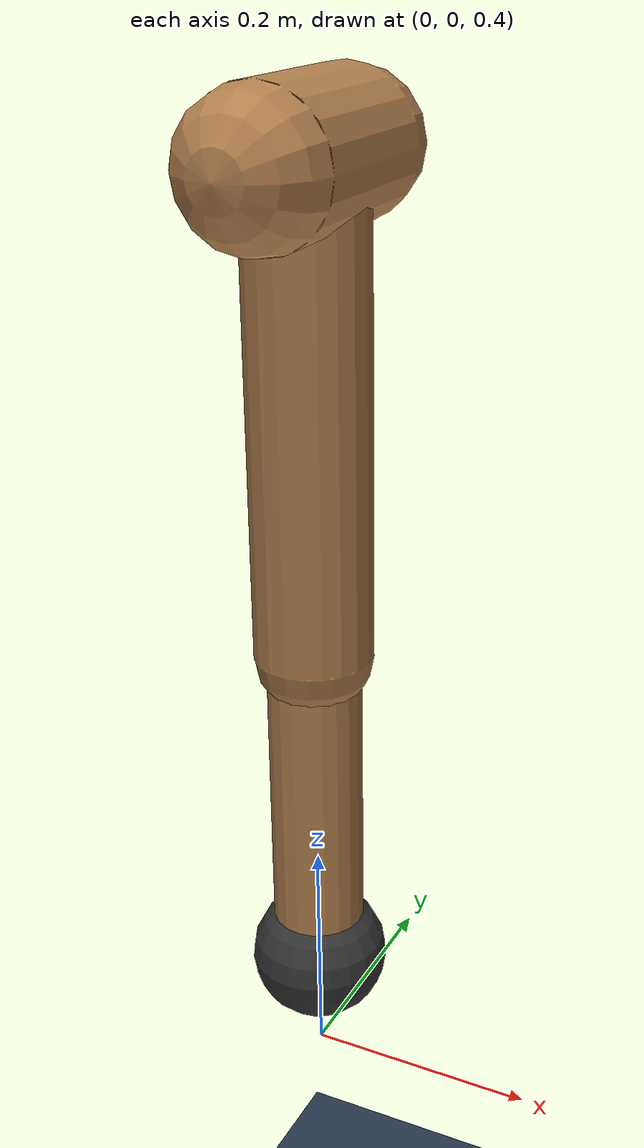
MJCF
<mujoco model="SimpleHopper_v3_Flipped">

  <compiler angle="degree"/>

  <option timestep="0.002" gravity="0 0 -9.81">
    <flag contact="enable"/>
  </option>

  <visual>
    <map znear="0.01"/>
    <headlight ambient="0.4 0.4 0.4" diffuse="0.8 0.8 0.8" specular="0.1 0.1 0.1"/>
  </visual>

  <asset>
    <texture type="2d" name="groundplane" builtin="checker" rgb1=".2 .3 .4" rgb2=".1 .15 .2" width="200" height="200"/>
    <material name="groundmat" texture="groundplane" texrepeat="10 10" reflectance="0.2"/>
    <material name="robotmat" rgba="0.7 0.5 0.3 1.0" specular="0.5" shininess="0.5"/>
    <material name="footmat" rgba="0.2 0.2 0.2 1.0" specular="0.1" shininess="0.1"/>
  </asset>

  <default>
      <joint type="hinge" damping="0.1" armature="0.01" limited="true"/>
      <geom type="capsule" size="0.04" material="robotmat"/>
      <motor ctrllimited="true" ctrlrange="-1.0 1.0"/>
  </default>

  <!-- Keyframe with Flipped Orientation -->
  <keyframe>
    <!-- qpos order: freejoint(7) + hip(1) + knee(1) -->
    <!-- freejoint: x,y,z, qw,qx,qy,qz -->
    <!-- Quaternion changed from (1 0 0 0) to (0 1 0 0) for 180deg flip around X -->
    <key name="init" qpos="0 0 1.2 0 1 0 0 0 0" />
  </keyframe>

  <worldbody>
    <geom name="ground" type="plane" size="20 20 0.1" material="groundmat" condim="3"/>
    <light name="mainlight" pos="0 0 5" dir="0 0 -1" diffuse="1.2 1.2 1.2" specular="0.1 0.1 0.1" castshadow="true"/>

    <body name="torso" pos="0 0 1.2"> <!-- Position set by keyframe -->
      <freejoint name="root"/>
      <geom type="capsule" fromto="0 -.07 0 0 .07 0" size="0.06" name="torso_geom" mass="3.0"/>

      <body name="thigh" pos="0 0 0">
        <!-- Using the axis and range from previous attempt, focus is on initial orientation -->
        <joint name="hip" axis="0 1 0" range="-20 150"/>
        <geom fromto="0 0 0  0 0 -0.4" size="0.05" name="thigh_geom" mass="1.0"/>

        <body name="leg" pos="0 0 -0.4">
          <joint name="knee" axis="0 1 0" range="-20 150"/>
          <geom fromto="0 0 0  0 0 -0.3" size="0.04" name="leg_geom" mass="0.7"/>

          <body name="foot" pos="0 0 -0.3">
            <geom type="sphere" size="0.06" name="foot_geom" mass="0.3" material="footmat" condim="3" contype="1" conaffinity="1"/>
          </body> <!-- End Foot -->
        </body> <!-- End Leg -->
      </body> <!-- End Thigh -->
    </body> <!-- End Torso -->

  </worldbody>

  <actuator>
    <motor name="hip_motor"  joint="hip"  gear="150"/>
    <motor name="knee_motor" joint="knee" gear="100"/>
  </actuator>

  <sensor>
    <!-- Sensors remain the same -->
    <jointpos name="hip_pos" joint="hip"/>
    <jointvel name="hip_vel" joint="hip"/>
    <jointpos name="knee_pos" joint="knee"/>
    <jointvel name="knee_vel" joint="knee"/>
    <framepos name="torso_pos" objtype="body" objname="torso"/>
    <framequat name="torso_quat" objtype="body" objname="torso"/>
    <framelinvel name="torso_linvel" objtype="body" objname="torso"/>
    <frameangvel name="torso_angvel" objtype="body" objname="torso"/>
  </sensor>

</mujoco>
